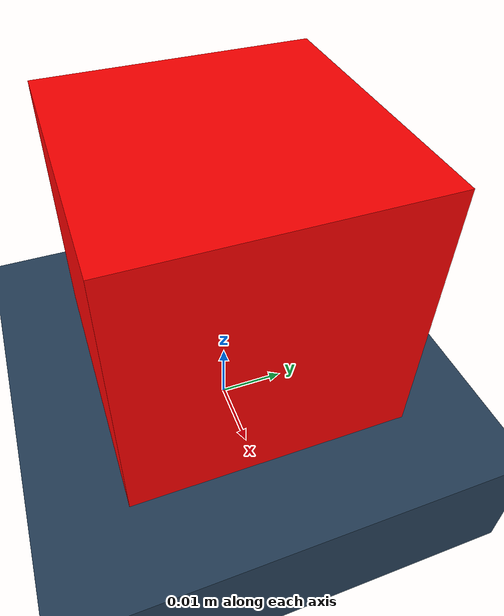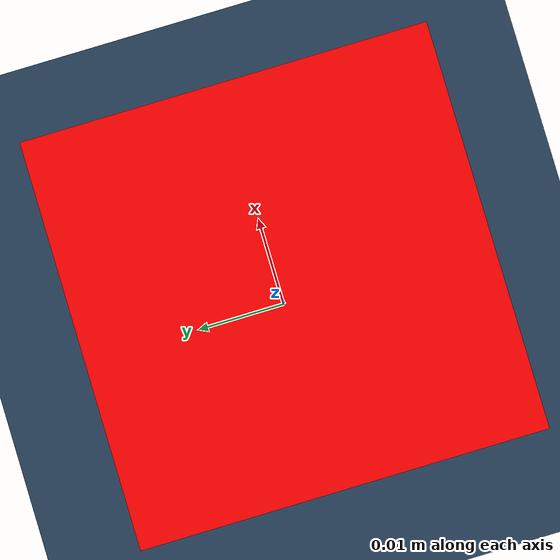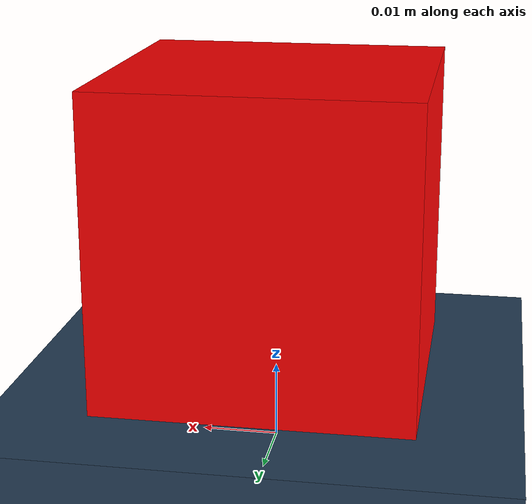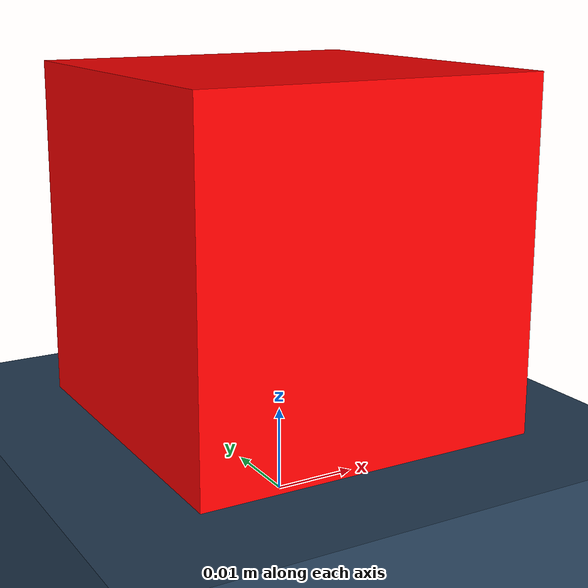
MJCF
<mujoco>
  <option gravity="0 0 -10"/>
  <default>
    <joint armature="0.01" damping="0.1" limited="true"/>
    <geom density="1000"/>
  </default>

  <asset>
    <texture name="grid" type="2d" builtin="checker" rgb1=".1 .2 .3" rgb2=".2 .3 .4" width="300" height="300"/>
    <material name="floor_mat" texture="grid" texrepeat="8 8" reflectance=".2"/>
    <material name="ball_mat" texture="checks" texrepeat="2 2" texuniform="true"/>
    <texture name="checks" type = "2d" builtin="checker" width = '256' height='256' rgb1="1 0 0" rgb2="0 1 0"/>
  </asset>

  <worldbody>
    <light pos="0 0 .6"/>
    <camera name="top" pos="0 0 1" xyaxes="1 0 0 0 1 2"/>

    <!-- Floor -->
    <body name="floor">
      <geom size=".5 .5 .01" type="box" material="floor_mat"/>
    </body>

    <!-- Target -->
    <body name="target" pos="0 0 .03">
      <joint armature="0" axis="1 0 0" damping="0" limited="true" name="target_x" pos="0 0 0" range="-.37 .57" ref=".1" stiffness="0" type="slide"/>
      <joint armature="0" axis="0 1 0" damping="0" limited="true" name="target_y" pos="0 0 0" range="-.57 .37" ref="-.1" stiffness="0" type="slide"/>
      <geom name="target" type="box" size=".02 .02 .02" pos="0 0 0" rgba="1 0 0 1" friction="0.7 0.1 0.1"/>
    </body>

    <!-- Agent -->
    <body name="ball" pos="0 0 .03">
      <joint axis="1 0 0" name="rotx" pos="0 0 0" range="-1 1" type="slide"/>
      <joint axis="0 1 0" name="roty" pos="0 0 0" range="-1 1" type="slide"/>
      <joint axis="0 0 1" name="rotz" pos="0 0 0" range="-1 0.02" type="slide"/>
      <geom name="ball" type="sphere" size=".02" material="ball_mat"/>
    </body>
  </worldbody>

  <actuator>
    <motor ctrllimited="true" ctrlrange="-5.0 5.0" joint="rotx"/>
    <motor ctrllimited="true" ctrlrange="-5.0 5.0" joint="roty"/>
  </actuator>

</mujoco>
